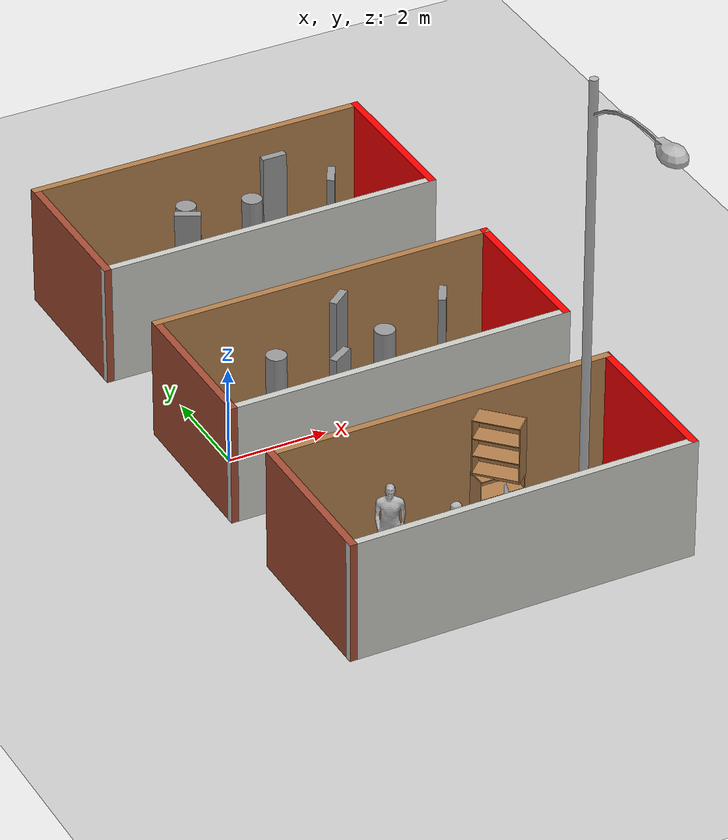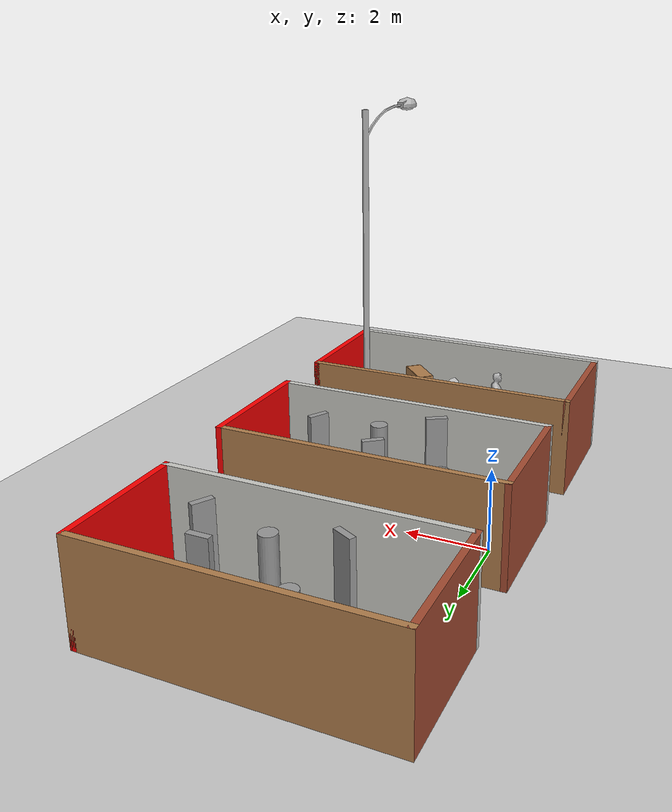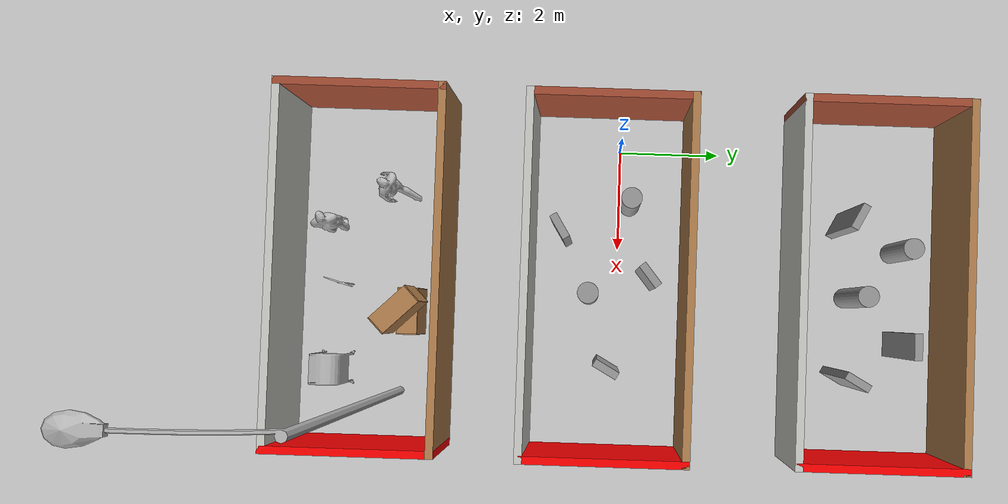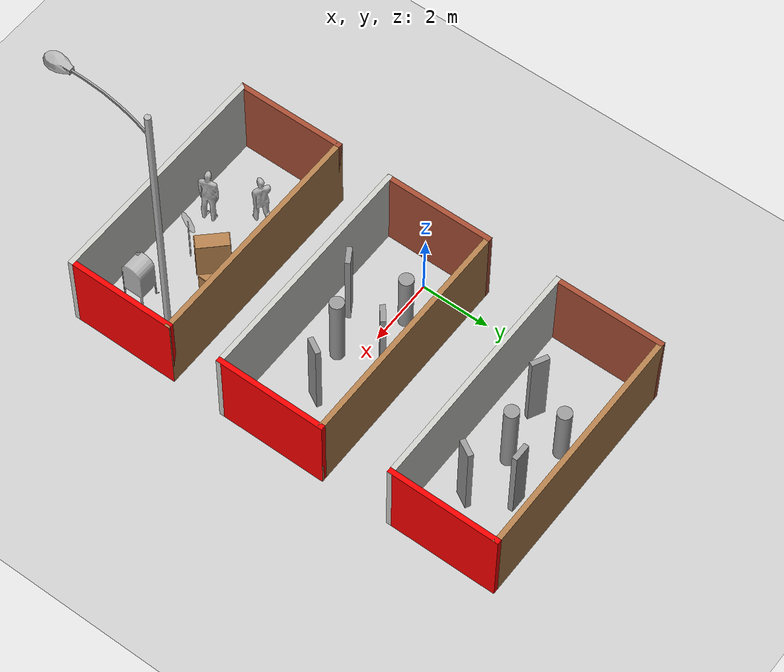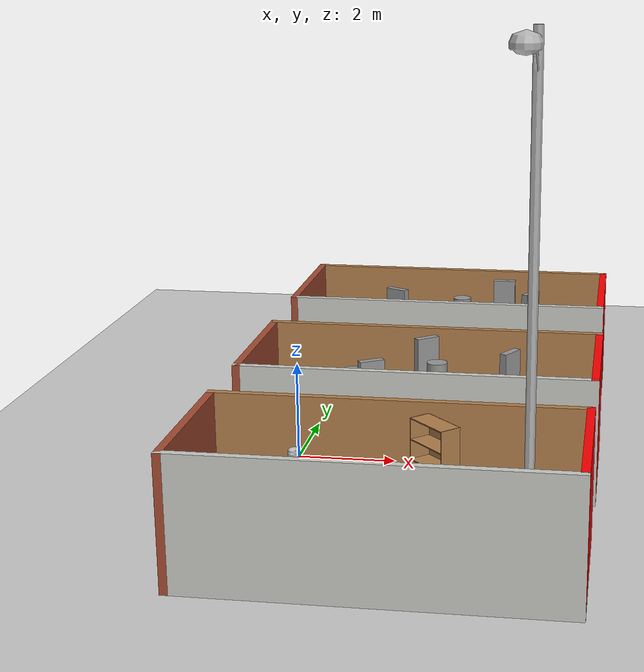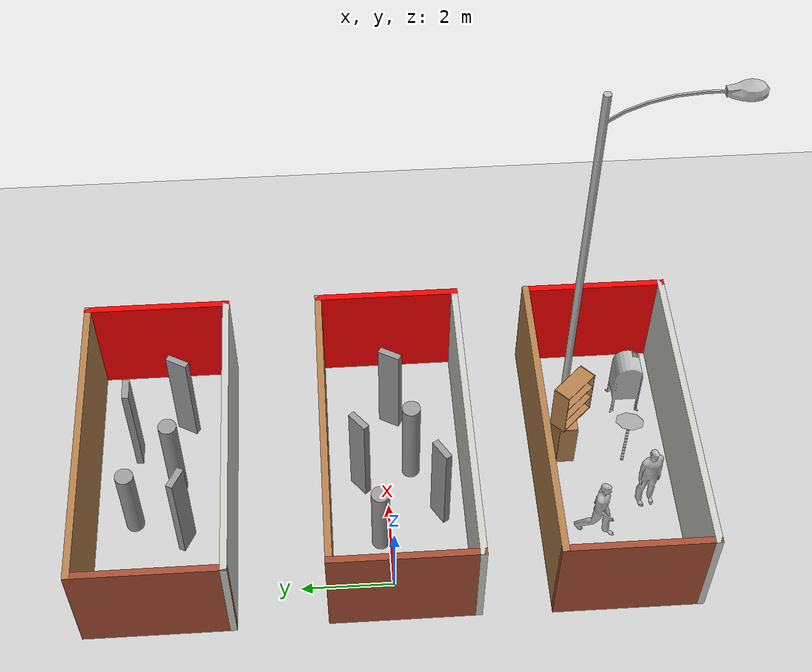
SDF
<sdf version="1.6">
 <world name="default">
  <light name="sun" type="directional">
   <pose>0 0 10 0 -0 0</pose>
   <diffuse>0.8 0.8 0.8 1</diffuse>
   <specular>0.2 0.2 0.2 1</specular>
   <attenuation>
    <range>1000</range>
    <constant>0.9</constant>
    <linear>0.01</linear>
    <quadratic>0.001</quadratic>
   </attenuation>
   <direction>-0.5 0.1 -0.9</direction>
  </light>
  <plugin name="ros_interface_plugin" filename="librotors_gazebo_ros_interface_plugin.so"/>
  <model name="ground_plane">
   <static>1</static>
   <link name="link">
    <collision name="collision">
     <geometry><plane><normal>0 0 1</normal><size>100 100</size></plane></geometry>
     <surface><friction><ode><mu>100</mu><mu2>50</mu2></ode></friction></surface>
    </collision>
    <visual name="visual">
     <cast_shadows>0</cast_shadows>
     <geometry><plane><normal>0 0 1</normal><size>100 100</size></plane></geometry>
     <material>
      <script><uri>file://media/materials/scripts/gazebo.material</uri><name>Gazebo/Grey</name></script>
     </material>
    </visual>
   </link>
  </model>
  <gravity>0 0 -9.8</gravity>
  <magnetic_field>6e-06 2.3e-05 -4.2e-05</magnetic_field>
  <atmosphere type="adiabatic"/>
  <physics name="default_physics" default="0" type="ode">
   <max_step_size>0.001</max_step_size>
   <real_time_factor>1</real_time_factor>
   <real_time_update_rate>1000</real_time_update_rate>
  </physics>
  <scene><ambient>0.4 0.4 0.4 1</ambient><background>0.7 0.7 0.7 1</background><shadows>1</shadows></scene>
  <spherical_coordinates>
   <surface_model>EARTH_WGS84</surface_model>
   <latitude_deg>0</latitude_deg>
   <longitude_deg>0</longitude_deg>
   <elevation>0</elevation>
   <heading_deg>0</heading_deg>
  </spherical_coordinates>
  <model name="train_with_test">
   <model name="rectangle_0">
    <link name="Floor_0">
     <pose>-0.037613 -0.045756 2.5 0 -0 0</pose>
     <inertial>
      <mass>1</mass>
      <inertia><ixx>1</ixx><ixy>0</ixy><ixz>0</ixz><iyy>1</iyy><iyz>0</iyz><izz>1</izz></inertia>
     </inertial>
     <visual name="Floor_0_Visual">
      <pose>0 0 0.05 0 -0 0</pose>
      <geometry><box><size>7 3.25 0.1</size></box></geometry>
      <material>
       <script><uri>file://media/materials/scripts/gazebo.material</uri><name>Gazebo/Grey</name></script>
       <ambient>1 1 1 1</ambient>
       <shader type="pixel"><normal_map>__default__</normal_map></shader>
       <diffuse>0.7 0.7 0.7 1</diffuse>
       <specular>0.01 0.01 0.01 1</specular>
       <emissive>0 0 0 1</emissive>
      </material>
      <meta><layer>1</layer></meta>
      <transparency>1</transparency>
     </visual>
     <collision name="Floor_0_Collision">
      <pose>0 0 0.05 0 -0 0</pose>
      <geometry><box><size>7 3.25 0.1</size></box></geometry>
      <surface>
       <friction>
        <ode><mu>1</mu><mu2>1</mu2><fdir1>0 0 0</fdir1><slip1>0</slip1><slip2>0</slip2></ode>
        <torsional>
         <coefficient>1</coefficient>
         <patch_radius>0</patch_radius>
         <surface_radius>0</surface_radius>
         <use_patch_radius>1</use_patch_radius>
         <ode><slip>0</slip></ode>
        </torsional>
       </friction>
       <bounce><restitution_coefficient>0</restitution_coefficient><threshold>1e+06</threshold></bounce>
       <contact>
        <collide_without_contact>0</collide_without_contact>
        <collide_without_contact_bitmask>1</collide_without_contact_bitmask>
        <collide_bitmask>1</collide_bitmask>
        <ode>
         <soft_cfm>0</soft_cfm>
         <soft_erp>0.2</soft_erp>
         <kp>1e+13</kp>
         <kd>1</kd>
         <max_vel>0.01</max_vel>
         <min_depth>0</min_depth>
        </ode>
        <bullet>
         <split_impulse>1</split_impulse>
         <split_impulse_penetration_threshold>-0.01</split_impulse_penetration_threshold>
         <soft_cfm>0</soft_cfm>
         <soft_erp>0.2</soft_erp>
         <kp>1e+13</kp>
         <kd>1</kd>
        </bullet>
       </contact>
      </surface>
     </collision>
    </link>
    <link name="Wall_0">
     <pose>0 1.55 0 0 -0 0</pose>
     <visual name="Wall_0_Visual">
      <pose>0 0 1.25 0 -0 0</pose>
      <geometry><box><size>7 0.15 2.5</size></box></geometry>
      <material>
       <script><uri>file://media/materials/scripts/gazebo.material</uri><name>Gazebo/Wood</name></script>
       <ambient>1 1 1 1</ambient>
       <shader type="pixel"/>
       <diffuse>1 1 1 1</diffuse>
       <specular>0.2 0.2 0.2 1</specular>
       <emissive>0 0 0 1</emissive>
      </material>
      <meta><layer>0</layer></meta>
     </visual>
     <collision name="Wall_0_Collision">
      <pose>0 0 1.25 0 -0 0</pose>
      <geometry><box><size>7 0.15 2.5</size></box></geometry>
      <surface>
       <friction>
        <ode><mu>1</mu><mu2>1</mu2><fdir1>0 0 0</fdir1><slip1>0</slip1><slip2>0</slip2></ode>
        <torsional>
         <coefficient>1</coefficient>
         <patch_radius>0</patch_radius>
         <surface_radius>0</surface_radius>
         <use_patch_radius>1</use_patch_radius>
         <ode><slip>0</slip></ode>
        </torsional>
       </friction>
       <bounce><restitution_coefficient>0</restitution_coefficient><threshold>1e+06</threshold></bounce>
       <contact>
        <collide_without_contact>0</collide_without_contact>
        <collide_without_contact_bitmask>1</collide_without_contact_bitmask>
        <collide_bitmask>1</collide_bitmask>
        <ode>
         <soft_cfm>0</soft_cfm>
         <soft_erp>0.2</soft_erp>
         <kp>1e+13</kp>
         <kd>1</kd>
         <max_vel>0.01</max_vel>
         <min_depth>0</min_depth>
        </ode>
        <bullet>
         <split_impulse>1</split_impulse>
         <split_impulse_penetration_threshold>-0.01</split_impulse_penetration_threshold>
         <soft_cfm>0</soft_cfm>
         <soft_erp>0.2</soft_erp>
         <kp>1e+13</kp>
         <kd>1</kd>
        </bullet>
       </contact>
      </surface>
     </collision>
    </link>
    <link name="Wall_1">
     <pose>3.425 0 0 0 0 -1.5708</pose>
     <visual name="Wall_1_Visual">
      <pose>0 0 1.25 0 -0 0</pose>
      <geometry><box><size>3.25 0.15 2.5</size></box></geometry>
      <material>
       <script><uri>file://media/materials/scripts/gazebo.material</uri><name>Gazebo/Grey</name></script>
       <ambient>1 0 0 1</ambient>
       <shader type="pixel"/>
       <diffuse>0.7 0.7 0.7 1</diffuse>
       <specular>0.01 0.01 0.01 1</specular>
       <emissive>0 0 0 1</emissive>
      </material>
      <meta><layer>0</layer></meta>
     </visual>
     <collision name="Wall_1_Collision">
      <pose>0 0 1.25 0 -0 0</pose>
      <geometry><box><size>3.25 0.15 2.5</size></box></geometry>
      <surface>
       <friction>
        <ode><mu>1</mu><mu2>1</mu2><fdir1>0 0 0</fdir1><slip1>0</slip1><slip2>0</slip2></ode>
        <torsional>
         <coefficient>1</coefficient>
         <patch_radius>0</patch_radius>
         <surface_radius>0</surface_radius>
         <use_patch_radius>1</use_patch_radius>
         <ode><slip>0</slip></ode>
        </torsional>
       </friction>
       <bounce><restitution_coefficient>0</restitution_coefficient><threshold>1e+06</threshold></bounce>
       <contact>
        <collide_without_contact>0</collide_without_contact>
        <collide_without_contact_bitmask>1</collide_without_contact_bitmask>
        <collide_bitmask>1</collide_bitmask>
        <ode>
         <soft_cfm>0</soft_cfm>
         <soft_erp>0.2</soft_erp>
         <kp>1e+13</kp>
         <kd>1</kd>
         <max_vel>0.01</max_vel>
         <min_depth>0</min_depth>
        </ode>
        <bullet>
         <split_impulse>1</split_impulse>
         <split_impulse_penetration_threshold>-0.01</split_impulse_penetration_threshold>
         <soft_cfm>0</soft_cfm>
         <soft_erp>0.2</soft_erp>
         <kp>1e+13</kp>
         <kd>1</kd>
        </bullet>
       </contact>
      </surface>
     </collision>
    </link>
    <link name="Wall_2">
     <pose>0 -1.55 0 0 -0 3.14159</pose>
     <visual name="Wall_2_Visual">
      <pose>0 0 1.25 0 -0 0</pose>
      <geometry><box><size>7 0.15 2.5</size></box></geometry>
      <material>
       <script><uri>file://media/materials/scripts/gazebo.material</uri><name>Gazebo/CeilingTiled</name></script>
       <ambient>1 1 1 1</ambient>
       <shader type="pixel"/>
       <diffuse>1 1 1 1</diffuse>
       <specular>0 0 0 1</specular>
       <emissive>0 0 0 1</emissive>
      </material>
      <meta><layer>0</layer></meta>
     </visual>
     <collision name="Wall_2_Collision">
      <pose>0 0 1.25 0 -0 0</pose>
      <geometry><box><size>7 0.15 2.5</size></box></geometry>
      <surface>
       <friction>
        <ode><mu>1</mu><mu2>1</mu2><fdir1>0 0 0</fdir1><slip1>0</slip1><slip2>0</slip2></ode>
        <torsional>
         <coefficient>1</coefficient>
         <patch_radius>0</patch_radius>
         <surface_radius>0</surface_radius>
         <use_patch_radius>1</use_patch_radius>
         <ode><slip>0</slip></ode>
        </torsional>
       </friction>
       <bounce><restitution_coefficient>0</restitution_coefficient><threshold>1e+06</threshold></bounce>
       <contact>
        <collide_without_contact>0</collide_without_contact>
        <collide_without_contact_bitmask>1</collide_without_contact_bitmask>
        <collide_bitmask>1</collide_bitmask>
        <ode>
         <soft_cfm>0</soft_cfm>
         <soft_erp>0.2</soft_erp>
         <kp>1e+13</kp>
         <kd>1</kd>
         <max_vel>0.01</max_vel>
         <min_depth>0</min_depth>
        </ode>
        <bullet>
         <split_impulse>1</split_impulse>
         <split_impulse_penetration_threshold>-0.01</split_impulse_penetration_threshold>
         <soft_cfm>0</soft_cfm>
         <soft_erp>0.2</soft_erp>
         <kp>1e+13</kp>
         <kd>1</kd>
        </bullet>
       </contact>
      </surface>
     </collision>
    </link>
    <link name="Wall_3">
     <pose>-3.425 0 0 0 -0 1.5708</pose>
     <visual name="Wall_3_Visual">
      <pose>0 0 1.25 0 -0 0</pose>
      <geometry><box><size>3.25 0.15 2.5</size></box></geometry>
      <material>
       <script><uri>file://media/materials/scripts/gazebo.material</uri><name>Gazebo/Bricks</name></script>
       <ambient>1 1 1 1</ambient>
       <shader type="pixel"/>
       <diffuse>1 1 1 1</diffuse>
       <specular>0.2 0.2 0.2 1</specular>
       <emissive>0 0 0 1</emissive>
      </material>
      <meta><layer>0</layer></meta>
     </visual>
     <collision name="Wall_3_Collision">
      <pose>0 0 1.25 0 -0 0</pose>
      <geometry><box><size>3.25 0.15 2.5</size></box></geometry>
      <surface>
       <friction>
        <ode><mu>1</mu><mu2>1</mu2><fdir1>0 0 0</fdir1><slip1>0</slip1><slip2>0</slip2></ode>
        <torsional>
         <coefficient>1</coefficient>
         <patch_radius>0</patch_radius>
         <surface_radius>0</surface_radius>
         <use_patch_radius>1</use_patch_radius>
         <ode><slip>0</slip></ode>
        </torsional>
       </friction>
       <bounce><restitution_coefficient>0</restitution_coefficient><threshold>1e+06</threshold></bounce>
       <contact>
        <collide_without_contact>0</collide_without_contact>
        <collide_without_contact_bitmask>1</collide_without_contact_bitmask>
        <collide_bitmask>1</collide_bitmask>
        <ode>
         <soft_cfm>0</soft_cfm>
         <soft_erp>0.2</soft_erp>
         <kp>1e+13</kp>
         <kd>1</kd>
         <max_vel>0.01</max_vel>
         <min_depth>0</min_depth>
        </ode>
        <bullet>
         <split_impulse>1</split_impulse>
         <split_impulse_penetration_threshold>-0.01</split_impulse_penetration_threshold>
         <soft_cfm>0</soft_cfm>
         <soft_erp>0.2</soft_erp>
         <kp>1e+13</kp>
         <kd>1</kd>
        </bullet>
       </contact>
      </surface>
     </collision>
    </link>
    <model name="unit_cylinder">
     <static>1</static>
     <link name="link">
      <inertial>
       <mass>1000</mass>
       <inertia><ixx>0.145833</ixx><ixy>0</ixy><ixz>0</ixz><iyy>0.145833</iyy><iyz>0</iyz><izz>0.125</izz></inertia>
      </inertial>
      <visual name="visual">
       <geometry><cylinder><radius>0.2</radius><length>2.5</length></cylinder></geometry>
       <material>
        <script><name>Gazebo/Grey</name><uri>file://media/materials/scripts/gazebo.material</uri></script>
        <shader type="pixel"><normal_map>__default__</normal_map></shader>
        <ambient>0.3 0.3 0.3 1</ambient>
        <diffuse>0.7 0.7 0.7 1</diffuse>
        <specular>0.01 0.01 0.01 1</specular>
        <emissive>0 0 0 1</emissive>
       </material>
      </visual>
      <collision name="collision">
       <geometry><cylinder><radius>0.2</radius><length>2.5</length></cylinder></geometry>
       <surface>
        <friction>
         <ode><mu>1</mu><mu2>1</mu2><fdir1>0 0 0</fdir1><slip1>0</slip1><slip2>0</slip2></ode>
         <torsional>
          <coefficient>1</coefficient>
          <patch_radius>0</patch_radius>
          <surface_radius>0</surface_radius>
          <use_patch_radius>1</use_patch_radius>
          <ode><slip>0</slip></ode>
         </torsional>
        </friction>
        <bounce><restitution_coefficient>0</restitution_coefficient><threshold>1e+06</threshold></bounce>
        <contact>
         <collide_without_contact>0</collide_without_contact>
         <collide_without_contact_bitmask>1</collide_without_contact_bitmask>
         <collide_bitmask>1</collide_bitmask>
         <ode>
          <soft_cfm>0</soft_cfm>
          <soft_erp>0.2</soft_erp>
          <kp>1e+13</kp>
          <kd>1</kd>
          <max_vel>0.01</max_vel>
          <min_depth>0</min_depth>
         </ode>
         <bullet>
          <split_impulse>1</split_impulse>
          <split_impulse_penetration_threshold>-0.01</split_impulse_penetration_threshold>
          <soft_cfm>0</soft_cfm>
          <soft_erp>0.2</soft_erp>
          <kp>1e+13</kp>
          <kd>1</kd>
         </bullet>
        </contact>
       </surface>
      </collision>
     </link>
     <static>0</static>
     <pose>-0.714118 0.631942 0.624728 0 -0 0</pose>
    </model>
    <model name="unit_cylinder_0">
     <static>1</static>
     <link name="link">
      <inertial>
       <mass>1000</mass>
       <inertia><ixx>0.145833</ixx><ixy>0</ixy><ixz>0</ixz><iyy>0.145833</iyy><iyz>0</iyz><izz>0.125</izz></inertia>
      </inertial>
      <visual name="visual">
       <geometry><cylinder><radius>0.2</radius><length>2.5</length></cylinder></geometry>
       <material>
        <script><name>Gazebo/Grey</name><uri>file://media/materials/scripts/gazebo.material</uri></script>
        <shader type="pixel"><normal_map>__default__</normal_map></shader>
        <ambient>0.3 0.3 0.3 1</ambient>
        <diffuse>0.7 0.7 0.7 1</diffuse>
        <specular>0.01 0.01 0.01 1</specular>
        <emissive>0 0 0 1</emissive>
       </material>
      </visual>
      <collision name="collision">
       <geometry><cylinder><radius>0.2</radius><length>2.5</length></cylinder></geometry>
       <surface>
        <friction>
         <ode><mu>1</mu><mu2>1</mu2><fdir1>0 0 0</fdir1><slip1>0</slip1><slip2>0</slip2></ode>
         <torsional>
          <coefficient>1</coefficient>
          <patch_radius>0</patch_radius>
          <surface_radius>0</surface_radius>
          <use_patch_radius>1</use_patch_radius>
          <ode><slip>0</slip></ode>
         </torsional>
        </friction>
        <bounce><restitution_coefficient>0</restitution_coefficient><threshold>1e+06</threshold></bounce>
        <contact>
         <collide_without_contact>0</collide_without_contact>
         <collide_without_contact_bitmask>1</collide_without_contact_bitmask>
         <collide_bitmask>1</collide_bitmask>
         <ode>
          <soft_cfm>0</soft_cfm>
          <soft_erp>0.2</soft_erp>
          <kp>1e+13</kp>
          <kd>1</kd>
          <max_vel>0.01</max_vel>
          <min_depth>0</min_depth>
         </ode>
         <bullet>
          <split_impulse>1</split_impulse>
          <split_impulse_penetration_threshold>-0.01</split_impulse_penetration_threshold>
          <soft_cfm>0</soft_cfm>
          <soft_erp>0.2</soft_erp>
          <kp>1e+13</kp>
          <kd>1</kd>
         </bullet>
        </contact>
       </surface>
      </collision>
     </link>
     <static>0</static>
     <pose>0.236201 -0.299847 1.0305 0 -0 0</pose>
    </model>
    <model name="wal.5">
     <static>1</static>
     <pose>1.14131 0.594105 0 0 -0 0</pose>
     <link name="Wall_13">
      <collision name="Wall_13_Collision">
       <geometry><box><size>0.5 0.15 2.5</size></box></geometry>
       <pose>0 0 1.25 0 -0 0</pose>
      </collision>
      <visual name="Wall_13_Visual">
       <pose>0 0 1.25 0 -0 0</pose>
       <geometry><box><size>0.5 0.15 2.5</size></box></geometry>
       <material>
        <script><uri>file://media/materials/scripts/gazebo.material</uri><name>Gazebo/Grey</name></script>
        <ambient>1 1 1 1</ambient>
       </material>
       <meta><layer>0</layer></meta>
      </visual>
     </link>
     <static>1</static>
    </model>
    <model name="wal.5_0">
     <static>1</static>
     <pose>1.82409 -0.501349 0 0 -0 1.05606</pose>
     <link name="Wall_13">
      <collision name="Wall_13_Collision">
       <geometry><box><size>0.5 0.15 2.5</size></box></geometry>
       <pose>0 0 1.25 0 -0 0</pose>
      </collision>
      <visual name="Wall_13_Visual">
       <pose>0 0 1.25 0 -0 0</pose>
       <geometry><box><size>0.5 0.15 2.5</size></box></geometry>
       <material>
        <script><uri>file://media/materials/scripts/gazebo.material</uri><name>Gazebo/Grey</name></script>
        <ambient>1 1 1 1</ambient>
       </material>
       <meta><layer>0</layer></meta>
      </visual>
     </link>
     <static>1</static>
    </model>
    <model name="wal.5_1">
     <static>1</static>
     <pose>-1.23686 -0.52787 0 0 0 -0.475164</pose>
     <link name="Wall_13">
      <collision name="Wall_13_Collision">
       <geometry><box><size>0.5 0.15 2.5</size></box></geometry>
       <pose>0 0 1.25 0 -0 0</pose>
      </collision>
      <visual name="Wall_13_Visual">
       <pose>0 0 1.25 0 -0 0</pose>
       <geometry><box><size>0.5 0.15 2.5</size></box></geometry>
       <material>
        <script><uri>file://media/materials/scripts/gazebo.material</uri><name>Gazebo/Grey</name></script>
        <ambient>1 1 1 1</ambient>
       </material>
       <meta><layer>0</layer></meta>
      </visual>
     </link>
     <static>1</static>
    </model>
    <static>1</static>
    <pose>-0.012983 4.98773 0 0 -0 0</pose>
   </model>
   <model name="test_rectangle">
    <link name="Floor_0">
     <pose>-0.010401 -0.028267 2.5 0 -0 0</pose>
     <inertial>
      <mass>1</mass>
      <inertia><ixx>1</ixx><ixy>0</ixy><ixz>0</ixz><iyy>1</iyy><iyz>0</iyz><izz>1</izz></inertia>
     </inertial>
     <visual name="Floor_0_Visual">
      <pose>0 0 0.05 0 -0 0</pose>
      <geometry><box><size>7 3.25 0.1</size></box></geometry>
      <material>
       <script><uri>file://media/materials/scripts/gazebo.material</uri><name>Gazebo/Grey</name></script>
       <ambient>1 1 1 1</ambient>
       <shader type="pixel"><normal_map>__default__</normal_map></shader>
       <diffuse>0.7 0.7 0.7 1</diffuse>
       <specular>0.01 0.01 0.01 1</specular>
       <emissive>0 0 0 1</emissive>
      </material>
      <meta><layer>1</layer></meta>
      <transparency>1</transparency>
     </visual>
     <collision name="Floor_0_Collision">
      <pose>0 0 0.05 0 -0 0</pose>
      <geometry><box><size>7 3.25 0.1</size></box></geometry>
      <surface>
       <friction>
        <ode><mu>1</mu><mu2>1</mu2><fdir1>0 0 0</fdir1><slip1>0</slip1><slip2>0</slip2></ode>
        <torsional>
         <coefficient>1</coefficient>
         <patch_radius>0</patch_radius>
         <surface_radius>0</surface_radius>
         <use_patch_radius>1</use_patch_radius>
         <ode><slip>0</slip></ode>
        </torsional>
       </friction>
       <bounce><restitution_coefficient>0</restitution_coefficient><threshold>1e+06</threshold></bounce>
       <contact>
        <collide_without_contact>0</collide_without_contact>
        <collide_without_contact_bitmask>1</collide_without_contact_bitmask>
        <collide_bitmask>1</collide_bitmask>
        <ode>
         <soft_cfm>0</soft_cfm>
         <soft_erp>0.2</soft_erp>
         <kp>1e+13</kp>
         <kd>1</kd>
         <max_vel>0.01</max_vel>
         <min_depth>0</min_depth>
        </ode>
        <bullet>
         <split_impulse>1</split_impulse>
         <split_impulse_penetration_threshold>-0.01</split_impulse_penetration_threshold>
         <soft_cfm>0</soft_cfm>
         <soft_erp>0.2</soft_erp>
         <kp>1e+13</kp>
         <kd>1</kd>
        </bullet>
       </contact>
      </surface>
     </collision>
    </link>
    <link name="Wall_0">
     <pose>0 1.55 0 0 -0 0</pose>
     <visual name="Wall_0_Visual">
      <pose>0 0 1.25 0 -0 0</pose>
      <geometry><box><size>7 0.15 2.5</size></box></geometry>
      <material>
       <script><uri>file://media/materials/scripts/gazebo.material</uri><name>Gazebo/Wood</name></script>
       <ambient>1 1 1 1</ambient>
       <shader type="pixel"/>
       <diffuse>1 1 1 1</diffuse>
       <specular>0.2 0.2 0.2 1</specular>
       <emissive>0 0 0 1</emissive>
      </material>
      <meta><layer>0</layer></meta>
     </visual>
     <collision name="Wall_0_Collision">
      <pose>0 0 1.25 0 -0 0</pose>
      <geometry><box><size>7 0.15 2.5</size></box></geometry>
      <surface>
       <friction>
        <ode><mu>1</mu><mu2>1</mu2><fdir1>0 0 0</fdir1><slip1>0</slip1><slip2>0</slip2></ode>
        <torsional>
         <coefficient>1</coefficient>
         <patch_radius>0</patch_radius>
         <surface_radius>0</surface_radius>
         <use_patch_radius>1</use_patch_radius>
         <ode><slip>0</slip></ode>
        </torsional>
       </friction>
       <bounce><restitution_coefficient>0</restitution_coefficient><threshold>1e+06</threshold></bounce>
       <contact>
        <collide_without_contact>0</collide_without_contact>
        <collide_without_contact_bitmask>1</collide_without_contact_bitmask>
        <collide_bitmask>1</collide_bitmask>
        <ode>
         <soft_cfm>0</soft_cfm>
         <soft_erp>0.2</soft_erp>
         <kp>1e+13</kp>
         <kd>1</kd>
         <max_vel>0.01</max_vel>
         <min_depth>0</min_depth>
        </ode>
        <bullet>
         <split_impulse>1</split_impulse>
         <split_impulse_penetration_threshold>-0.01</split_impulse_penetration_threshold>
         <soft_cfm>0</soft_cfm>
         <soft_erp>0.2</soft_erp>
         <kp>1e+13</kp>
         <kd>1</kd>
        </bullet>
       </contact>
      </surface>
     </collision>
    </link>
    <link name="Wall_1">
     <pose>3.425 0 0 0 0 -1.5708</pose>
     <visual name="Wall_1_Visual">
      <pose>0 0 1.25 0 -0 0</pose>
      <geometry><box><size>3.25 0.15 2.5</size></box></geometry>
      <material>
       <script><uri>file://media/materials/scripts/gazebo.material</uri><name>Gazebo/Grey</name></script>
       <ambient>1 0 0 1</ambient>
       <shader type="pixel"/>
       <diffuse>0.7 0.7 0.7 1</diffuse>
       <specular>0.01 0.01 0.01 1</specular>
       <emissive>0 0 0 1</emissive>
      </material>
      <meta><layer>0</layer></meta>
     </visual>
     <collision name="Wall_1_Collision">
      <pose>0 0 1.25 0 -0 0</pose>
      <geometry><box><size>3.25 0.15 2.5</size></box></geometry>
      <surface>
       <friction>
        <ode><mu>1</mu><mu2>1</mu2><fdir1>0 0 0</fdir1><slip1>0</slip1><slip2>0</slip2></ode>
        <torsional>
         <coefficient>1</coefficient>
         <patch_radius>0</patch_radius>
         <surface_radius>0</surface_radius>
         <use_patch_radius>1</use_patch_radius>
         <ode><slip>0</slip></ode>
        </torsional>
       </friction>
       <bounce><restitution_coefficient>0</restitution_coefficient><threshold>1e+06</threshold></bounce>
       <contact>
        <collide_without_contact>0</collide_without_contact>
        <collide_without_contact_bitmask>1</collide_without_contact_bitmask>
        <collide_bitmask>1</collide_bitmask>
        <ode>
         <soft_cfm>0</soft_cfm>
         <soft_erp>0.2</soft_erp>
         <kp>1e+13</kp>
         <kd>1</kd>
         <max_vel>0.01</max_vel>
         <min_depth>0</min_depth>
        </ode>
        <bullet>
         <split_impulse>1</split_impulse>
         <split_impulse_penetration_threshold>-0.01</split_impulse_penetration_threshold>
         <soft_cfm>0</soft_cfm>
         <soft_erp>0.2</soft_erp>
         <kp>1e+13</kp>
         <kd>1</kd>
        </bullet>
       </contact>
      </surface>
     </collision>
    </link>
    <link name="Wall_2">
     <pose>0 -1.55 0 0 -0 3.14159</pose>
     <visual name="Wall_2_Visual">
      <pose>0 0 1.25 0 -0 0</pose>
      <geometry><box><size>7 0.15 2.5</size></box></geometry>
      <material>
       <script><uri>file://media/materials/scripts/gazebo.material</uri><name>Gazebo/CeilingTiled</name></script>
       <ambient>1 1 1 1</ambient>
       <shader type="pixel"/>
       <diffuse>1 1 1 1</diffuse>
       <specular>0 0 0 1</specular>
       <emissive>0 0 0 1</emissive>
      </material>
      <meta><layer>0</layer></meta>
     </visual>
     <collision name="Wall_2_Collision">
      <pose>0 0 1.25 0 -0 0</pose>
      <geometry><box><size>7 0.15 2.5</size></box></geometry>
      <surface>
       <friction>
        <ode><mu>1</mu><mu2>1</mu2><fdir1>0 0 0</fdir1><slip1>0</slip1><slip2>0</slip2></ode>
        <torsional>
         <coefficient>1</coefficient>
         <patch_radius>0</patch_radius>
         <surface_radius>0</surface_radius>
         <use_patch_radius>1</use_patch_radius>
         <ode><slip>0</slip></ode>
        </torsional>
       </friction>
       <bounce><restitution_coefficient>0</restitution_coefficient><threshold>1e+06</threshold></bounce>
       <contact>
        <collide_without_contact>0</collide_without_contact>
        <collide_without_contact_bitmask>1</collide_without_contact_bitmask>
        <collide_bitmask>1</collide_bitmask>
        <ode>
         <soft_cfm>0</soft_cfm>
         <soft_erp>0.2</soft_erp>
         <kp>1e+13</kp>
         <kd>1</kd>
         <max_vel>0.01</max_vel>
         <min_depth>0</min_depth>
        </ode>
        <bullet>
         <split_impulse>1</split_impulse>
         <split_impulse_penetration_threshold>-0.01</split_impulse_penetration_threshold>
         <soft_cfm>0</soft_cfm>
         <soft_erp>0.2</soft_erp>
         <kp>1e+13</kp>
         <kd>1</kd>
        </bullet>
       </contact>
      </surface>
     </collision>
    </link>
    <link name="Wall_3">
     <pose>-3.425 0 0 0 -0 1.5708</pose>
     <visual name="Wall_3_Visual">
      <pose>0 0 1.25 0 -0 0</pose>
      <geometry><box><size>3.25 0.15 2.5</size></box></geometry>
      <material>
       <script><uri>file://media/materials/scripts/gazebo.material</uri><name>Gazebo/Bricks</name></script>
       <ambient>1 1 1 1</ambient>
       <shader type="pixel"/>
       <diffuse>1 1 1 1</diffuse>
       <specular>0.2 0.2 0.2 1</specular>
       <emissive>0 0 0 1</emissive>
      </material>
      <meta><layer>0</layer></meta>
     </visual>
     <collision name="Wall_3_Collision">
      <pose>0 0 1.25 0 -0 0</pose>
      <geometry><box><size>3.25 0.15 2.5</size></box></geometry>
      <surface>
       <friction>
        <ode><mu>1</mu><mu2>1</mu2><fdir1>0 0 0</fdir1><slip1>0</slip1><slip2>0</slip2></ode>
        <torsional>
         <coefficient>1</coefficient>
         <patch_radius>0</patch_radius>
         <surface_radius>0</surface_radius>
         <use_patch_radius>1</use_patch_radius>
         <ode><slip>0</slip></ode>
        </torsional>
       </friction>
       <bounce><restitution_coefficient>0</restitution_coefficient><threshold>1e+06</threshold></bounce>
       <contact>
        <collide_without_contact>0</collide_without_contact>
        <collide_without_contact_bitmask>1</collide_without_contact_bitmask>
        <collide_bitmask>1</collide_bitmask>
        <ode>
         <soft_cfm>0</soft_cfm>
         <soft_erp>0.2</soft_erp>
         <kp>1e+13</kp>
         <kd>1</kd>
         <max_vel>0.01</max_vel>
         <min_depth>0</min_depth>
        </ode>
        <bullet>
         <split_impulse>1</split_impulse>
         <split_impulse_penetration_threshold>-0.01</split_impulse_penetration_threshold>
         <soft_cfm>0</soft_cfm>
         <soft_erp>0.2</soft_erp>
         <kp>1e+13</kp>
         <kd>1</kd>
        </bullet>
       </contact>
      </surface>
     </collision>
    </link>
    <model name="unit_cylinder">
     <static>1</static>
     <link name="link">
      <inertial>
       <mass>1000</mass>
       <inertia><ixx>0.145833</ixx><ixy>0</ixy><ixz>0</ixz><iyy>0.145833</iyy><iyz>0</iyz><izz>0.125</izz></inertia>
      </inertial>
      <visual name="visual">
       <geometry><cylinder><radius>0.2</radius><length>2.5</length></cylinder></geometry>
       <material>
        <script><name>Gazebo/Grey</name><uri>file://media/materials/scripts/gazebo.material</uri></script>
        <shader type="pixel"><normal_map>__default__</normal_map></shader>
        <ambient>0.3 0.3 0.3 1</ambient>
        <diffuse>0.7 0.7 0.7 1</diffuse>
        <specular>0.01 0.01 0.01 1</specular>
        <emissive>0 0 0 1</emissive>
       </material>
      </visual>
      <collision name="collision">
       <geometry><cylinder><radius>0.2</radius><length>2.5</length></cylinder></geometry>
       <surface>
        <friction>
         <ode><mu>1</mu><mu2>1</mu2><fdir1>0 0 0</fdir1><slip1>0</slip1><slip2>0</slip2></ode>
         <torsional>
          <coefficient>1</coefficient>
          <patch_radius>0</patch_radius>
          <surface_radius>0</surface_radius>
          <use_patch_radius>1</use_patch_radius>
          <ode><slip>0</slip></ode>
         </torsional>
        </friction>
        <bounce><restitution_coefficient>0</restitution_coefficient><threshold>1e+06</threshold></bounce>
        <contact>
         <collide_without_contact>0</collide_without_contact>
         <collide_without_contact_bitmask>1</collide_without_contact_bitmask>
         <collide_bitmask>1</collide_bitmask>
         <ode>
          <soft_cfm>0</soft_cfm>
          <soft_erp>0.2</soft_erp>
          <kp>1e+13</kp>
          <kd>1</kd>
          <max_vel>0.01</max_vel>
          <min_depth>0</min_depth>
         </ode>
         <bullet>
          <split_impulse>1</split_impulse>
          <split_impulse_penetration_threshold>-0.01</split_impulse_penetration_threshold>
          <soft_cfm>0</soft_cfm>
          <soft_erp>0.2</soft_erp>
          <kp>1e+13</kp>
          <kd>1</kd>
         </bullet>
        </contact>
       </surface>
      </collision>
     </link>
     <static>0</static>
     <pose>-1.54211 0.416339 0.624728 0 -0 0</pose>
    </model>
    <model name="unit_cylinder_0">
     <static>1</static>
     <link name="link">
      <inertial>
       <mass>1000</mass>
       <inertia><ixx>0.145833</ixx><ixy>0</ixy><ixz>0</ixz><iyy>0.145833</iyy><iyz>0</iyz><izz>0.125</izz></inertia>
      </inertial>
      <visual name="visual">
       <geometry><cylinder><radius>0.2</radius><length>2.5</length></cylinder></geometry>
       <material>
        <script><name>Gazebo/Grey</name><uri>file://media/materials/scripts/gazebo.material</uri></script>
        <shader type="pixel"><normal_map>__default__</normal_map></shader>
        <ambient>0.3 0.3 0.3 1</ambient>
        <diffuse>0.7 0.7 0.7 1</diffuse>
        <specular>0.01 0.01 0.01 1</specular>
        <emissive>0 0 0 1</emissive>
       </material>
      </visual>
      <collision name="collision">
       <geometry><cylinder><radius>0.2</radius><length>2.5</length></cylinder></geometry>
       <surface>
        <friction>
         <ode><mu>1</mu><mu2>1</mu2><fdir1>0 0 0</fdir1><slip1>0</slip1><slip2>0</slip2></ode>
         <torsional>
          <coefficient>1</coefficient>
          <patch_radius>0</patch_radius>
          <surface_radius>0</surface_radius>
          <use_patch_radius>1</use_patch_radius>
          <ode><slip>0</slip></ode>
         </torsional>
        </friction>
        <bounce><restitution_coefficient>0</restitution_coefficient><threshold>1e+06</threshold></bounce>
        <contact>
         <collide_without_contact>0</collide_without_contact>
         <collide_without_contact_bitmask>1</collide_without_contact_bitmask>
         <collide_bitmask>1</collide_bitmask>
         <ode>
          <soft_cfm>0</soft_cfm>
          <soft_erp>0.2</soft_erp>
          <kp>1e+13</kp>
          <kd>1</kd>
          <max_vel>0.01</max_vel>
          <min_depth>0</min_depth>
         </ode>
         <bullet>
          <split_impulse>1</split_impulse>
          <split_impulse_penetration_threshold>-0.01</split_impulse_penetration_threshold>
          <soft_cfm>0</soft_cfm>
          <soft_erp>0.2</soft_erp>
          <kp>1e+13</kp>
          <kd>1</kd>
         </bullet>
        </contact>
       </surface>
      </collision>
     </link>
     <static>0</static>
     <pose>0.301347 -0.360935 1.08798 0 -0 0</pose>
    </model>
    <model name="wal.5">
     <static>1</static>
     <pose>-0.060844 0.789388 0 0 -0 0.673564</pose>
     <link name="Wall_13">
      <collision name="Wall_13_Collision">
       <geometry><box><size>0.5 0.15 2.5</size></box></geometry>
       <pose>0 0 1.25 0 -0 0</pose>
      </collision>
      <visual name="Wall_13_Visual">
       <pose>0 0 1.25 0 -0 0</pose>
       <geometry><box><size>0.5 0.15 2.5</size></box></geometry>
       <material>
        <script><uri>file://media/materials/scripts/gazebo.material</uri><name>Gazebo/Grey</name></script>
        <ambient>1 1 1 1</ambient>
       </material>
       <meta><layer>0</layer></meta>
      </visual>
     </link>
     <static>1</static>
    </model>
    <model name="wal.5_0">
     <pose>1.70551 0.018659 0 0 -0 1.05606</pose>
     <link name="Wall_13">
      <collision name="Wall_13_Collision">
       <geometry><box><size>0.5 0.15 2.5</size></box></geometry>
       <pose>0 0 1.25 0 -0 0</pose>
      </collision>
      <visual name="Wall_13_Visual">
       <pose>0 0 1.25 0 -0 0</pose>
       <geometry><box><size>0.5 0.15 2.5</size></box></geometry>
       <material>
        <script><uri>file://media/materials/scripts/gazebo.material</uri><name>Gazebo/Grey</name></script>
        <ambient>1 1 1 1</ambient>
       </material>
       <meta><layer>0</layer></meta>
      </visual>
     </link>
     <static>1</static>
    </model>
    <model name="wal.5_1">
     <pose>-0.914997 -0.923567 0 0 -0 0.550082</pose>
     <link name="Wall_13">
      <collision name="Wall_13_Collision">
       <geometry><box><size>0.5 0.15 2.5</size></box></geometry>
       <pose>0 0 1.25 0 -0 0</pose>
      </collision>
      <visual name="Wall_13_Visual">
       <pose>0 0 1.25 0 -0 0</pose>
       <geometry><box><size>0.5 0.15 2.5</size></box></geometry>
       <material>
        <script><uri>file://media/materials/scripts/gazebo.material</uri><name>Gazebo/Grey</name></script>
        <ambient>1 1 1 1</ambient>
       </material>
       <meta><layer>0</layer></meta>
      </visual>
     </link>
     <static>1</static>
    </model>
    <static>1</static>
    <pose>0.02245 -0.195718 0 0 -0 0</pose>
   </model>
   <model name="test_rectangle_12">
    <static>1</static>
    <link name="Floor_0">
     <pose>0.026754 0.023856 2.5 0 -0 0</pose>
     <inertial>
      <mass>1</mass>
      <inertia><ixx>1</ixx><ixy>0</ixy><ixz>0</ixz><iyy>1</iyy><iyz>0</iyz><izz>1</izz></inertia>
     </inertial>
     <visual name="Floor_0_Visual">
      <pose>0 0 0.05 0 -0 0</pose>
      <geometry><box><size>7 3.25 0.1</size></box></geometry>
      <material>
       <script><uri>file://media/materials/scripts/gazebo.material</uri><name>Gazebo/Grey</name></script>
       <ambient>1 1 1 1</ambient>
       <shader type="pixel"><normal_map>__default__</normal_map></shader>
       <diffuse>0.7 0.7 0.7 1</diffuse>
       <specular>0.01 0.01 0.01 1</specular>
       <emissive>0 0 0 1</emissive>
      </material>
      <meta><layer>1</layer></meta>
      <transparency>1</transparency>
     </visual>
     <collision name="Floor_0_Collision">
      <pose>0 0 0.05 0 -0 0</pose>
      <geometry><box><size>7 3.25 0.1</size></box></geometry>
      <surface>
       <friction>
        <ode><mu>1</mu><mu2>1</mu2><fdir1>0 0 0</fdir1><slip1>0</slip1><slip2>0</slip2></ode>
        <torsional>
         <coefficient>1</coefficient>
         <patch_radius>0</patch_radius>
         <surface_radius>0</surface_radius>
         <use_patch_radius>1</use_patch_radius>
         <ode><slip>0</slip></ode>
        </torsional>
       </friction>
       <bounce><restitution_coefficient>0</restitution_coefficient><threshold>1e+06</threshold></bounce>
       <contact>
        <collide_without_contact>0</collide_without_contact>
        <collide_without_contact_bitmask>1</collide_without_contact_bitmask>
        <collide_bitmask>1</collide_bitmask>
        <ode>
         <soft_cfm>0</soft_cfm>
         <soft_erp>0.2</soft_erp>
         <kp>1e+13</kp>
         <kd>1</kd>
         <max_vel>0.01</max_vel>
         <min_depth>0</min_depth>
        </ode>
        <bullet>
         <split_impulse>1</split_impulse>
         <split_impulse_penetration_threshold>-0.01</split_impulse_penetration_threshold>
         <soft_cfm>0</soft_cfm>
         <soft_erp>0.2</soft_erp>
         <kp>1e+13</kp>
         <kd>1</kd>
        </bullet>
       </contact>
      </surface>
     </collision>
    </link>
    <link name="Wall_0">
     <pose>0 1.55 0 0 -0 0</pose>
     <visual name="Wall_0_Visual">
      <pose>0 0 1.25 0 -0 0</pose>
      <geometry><box><size>7 0.15 2.5</size></box></geometry>
      <material>
       <script><uri>file://media/materials/scripts/gazebo.material</uri><name>Gazebo/Wood</name></script>
       <ambient>1 1 1 1</ambient>
       <shader type="pixel"/>
       <diffuse>1 1 1 1</diffuse>
       <specular>0.2 0.2 0.2 1</specular>
       <emissive>0 0 0 1</emissive>
      </material>
      <meta><layer>0</layer></meta>
     </visual>
     <collision name="Wall_0_Collision">
      <pose>0 0 1.25 0 -0 0</pose>
      <geometry><box><size>7 0.15 2.5</size></box></geometry>
      <surface>
       <friction>
        <ode><mu>1</mu><mu2>1</mu2><fdir1>0 0 0</fdir1><slip1>0</slip1><slip2>0</slip2></ode>
        <torsional>
         <coefficient>1</coefficient>
         <patch_radius>0</patch_radius>
         <surface_radius>0</surface_radius>
         <use_patch_radius>1</use_patch_radius>
         <ode><slip>0</slip></ode>
        </torsional>
       </friction>
       <bounce><restitution_coefficient>0</restitution_coefficient><threshold>1e+06</threshold></bounce>
       <contact>
        <collide_without_contact>0</collide_without_contact>
        <collide_without_contact_bitmask>1</collide_without_contact_bitmask>
        <collide_bitmask>1</collide_bitmask>
        <ode>
         <soft_cfm>0</soft_cfm>
         <soft_erp>0.2</soft_erp>
         <kp>1e+13</kp>
         <kd>1</kd>
         <max_vel>0.01</max_vel>
         <min_depth>0</min_depth>
        </ode>
        <bullet>
         <split_impulse>1</split_impulse>
         <split_impulse_penetration_threshold>-0.01</split_impulse_penetration_threshold>
         <soft_cfm>0</soft_cfm>
         <soft_erp>0.2</soft_erp>
         <kp>1e+13</kp>
         <kd>1</kd>
        </bullet>
       </contact>
      </surface>
     </collision>
    </link>
    <link name="Wall_1">
     <pose>3.425 0 0 0 0 -1.5708</pose>
     <visual name="Wall_1_Visual">
      <pose>0 0 1.25 0 -0 0</pose>
      <geometry><box><size>3.25 0.15 2.5</size></box></geometry>
      <material>
       <script><uri>file://media/materials/scripts/gazebo.material</uri><name>Gazebo/Grey</name></script>
       <ambient>1 0 0 1</ambient>
       <shader type="pixel"/>
       <diffuse>0.7 0.7 0.7 1</diffuse>
       <specular>0.01 0.01 0.01 1</specular>
       <emissive>0 0 0 1</emissive>
      </material>
      <meta><layer>0</layer></meta>
     </visual>
     <collision name="Wall_1_Collision">
      <pose>0 0 1.25 0 -0 0</pose>
      <geometry><box><size>3.25 0.15 2.5</size></box></geometry>
      <surface>
       <friction>
        <ode><mu>1</mu><mu2>1</mu2><fdir1>0 0 0</fdir1><slip1>0</slip1><slip2>0</slip2></ode>
        <torsional>
         <coefficient>1</coefficient>
         <patch_radius>0</patch_radius>
         <surface_radius>0</surface_radius>
         <use_patch_radius>1</use_patch_radius>
         <ode><slip>0</slip></ode>
        </torsional>
       </friction>
       <bounce><restitution_coefficient>0</restitution_coefficient><threshold>1e+06</threshold></bounce>
       <contact>
        <collide_without_contact>0</collide_without_contact>
        <collide_without_contact_bitmask>1</collide_without_contact_bitmask>
        <collide_bitmask>1</collide_bitmask>
        <ode>
         <soft_cfm>0</soft_cfm>
         <soft_erp>0.2</soft_erp>
         <kp>1e+13</kp>
         <kd>1</kd>
         <max_vel>0.01</max_vel>
         <min_depth>0</min_depth>
        </ode>
        <bullet>
         <split_impulse>1</split_impulse>
         <split_impulse_penetration_threshold>-0.01</split_impulse_penetration_threshold>
         <soft_cfm>0</soft_cfm>
         <soft_erp>0.2</soft_erp>
         <kp>1e+13</kp>
         <kd>1</kd>
        </bullet>
       </contact>
      </surface>
     </collision>
    </link>
    <link name="Wall_2">
     <pose>0 -1.55 0 0 -0 3.14159</pose>
     <visual name="Wall_2_Visual">
      <pose>0 0 1.25 0 -0 0</pose>
      <geometry><box><size>7 0.15 2.5</size></box></geometry>
      <material>
       <script><uri>file://media/materials/scripts/gazebo.material</uri><name>Gazebo/CeilingTiled</name></script>
       <ambient>1 1 1 1</ambient>
       <shader type="pixel"/>
       <diffuse>1 1 1 1</diffuse>
       <specular>0 0 0 1</specular>
       <emissive>0 0 0 1</emissive>
      </material>
      <meta><layer>0</layer></meta>
     </visual>
     <collision name="Wall_2_Collision">
      <pose>0 0 1.25 0 -0 0</pose>
      <geometry><box><size>7 0.15 2.5</size></box></geometry>
      <surface>
       <friction>
        <ode><mu>1</mu><mu2>1</mu2><fdir1>0 0 0</fdir1><slip1>0</slip1><slip2>0</slip2></ode>
        <torsional>
         <coefficient>1</coefficient>
         <patch_radius>0</patch_radius>
         <surface_radius>0</surface_radius>
         <use_patch_radius>1</use_patch_radius>
         <ode><slip>0</slip></ode>
        </torsional>
       </friction>
       <bounce><restitution_coefficient>0</restitution_coefficient><threshold>1e+06</threshold></bounce>
       <contact>
        <collide_without_contact>0</collide_without_contact>
        <collide_without_contact_bitmask>1</collide_without_contact_bitmask>
        <collide_bitmask>1</collide_bitmask>
        <ode>
         <soft_cfm>0</soft_cfm>
         <soft_erp>0.2</soft_erp>
         <kp>1e+13</kp>
         <kd>1</kd>
         <max_vel>0.01</max_vel>
         <min_depth>0</min_depth>
        </ode>
        <bullet>
         <split_impulse>1</split_impulse>
         <split_impulse_penetration_threshold>-0.01</split_impulse_penetration_threshold>
         <soft_cfm>0</soft_cfm>
         <soft_erp>0.2</soft_erp>
         <kp>1e+13</kp>
         <kd>1</kd>
        </bullet>
       </contact>
      </surface>
     </collision>
    </link>
    <link name="Wall_3">
     <pose>-3.425 0 0 0 -0 1.5708</pose>
     <visual name="Wall_3_Visual">
      <pose>0 0 1.25 0 -0 0</pose>
      <geometry><box><size>3.25 0.15 2.5</size></box></geometry>
      <material>
       <script><uri>file://media/materials/scripts/gazebo.material</uri><name>Gazebo/Bricks</name></script>
       <ambient>1 1 1 1</ambient>
       <shader type="pixel"/>
       <diffuse>1 1 1 1</diffuse>
       <specular>0.2 0.2 0.2 1</specular>
       <emissive>0 0 0 1</emissive>
      </material>
      <meta><layer>0</layer></meta>
     </visual>
     <collision name="Wall_3_Collision">
      <pose>0 0 1.25 0 -0 0</pose>
      <geometry><box><size>3.25 0.15 2.5</size></box></geometry>
      <surface>
       <friction>
        <ode><mu>1</mu><mu2>1</mu2><fdir1>0 0 0</fdir1><slip1>0</slip1><slip2>0</slip2></ode>
        <torsional>
         <coefficient>1</coefficient>
         <patch_radius>0</patch_radius>
         <surface_radius>0</surface_radius>
         <use_patch_radius>1</use_patch_radius>
         <ode><slip>0</slip></ode>
        </torsional>
       </friction>
       <bounce><restitution_coefficient>0</restitution_coefficient><threshold>1e+06</threshold></bounce>
       <contact>
        <collide_without_contact>0</collide_without_contact>
        <collide_without_contact_bitmask>1</collide_without_contact_bitmask>
        <collide_bitmask>1</collide_bitmask>
        <ode>
         <soft_cfm>0</soft_cfm>
         <soft_erp>0.2</soft_erp>
         <kp>1e+13</kp>
         <kd>1</kd>
         <max_vel>0.01</max_vel>
         <min_depth>0</min_depth>
        </ode>
        <bullet>
         <split_impulse>1</split_impulse>
         <split_impulse_penetration_threshold>-0.01</split_impulse_penetration_threshold>
         <soft_cfm>0</soft_cfm>
         <soft_erp>0.2</soft_erp>
         <kp>1e+13</kp>
         <kd>1</kd>
        </bullet>
       </contact>
      </surface>
     </collision>
    </link>
    <model name="Lamp Post">
     <static>1</static>
     <link name="link">
      <collision name="collision">
       <geometry><mesh><uri>model://lamp_post/meshes/lamp_post.dae</uri><scale>3 3 3</scale></mesh></geometry>
      </collision>
      <visual name="visual">
       <geometry><mesh><uri>model://lamp_post/meshes/lamp_post.dae</uri><scale>3 3 3</scale></mesh></geometry>
      </visual>
     </link>
     <pose>2.42438 0.556537 0 0 -0 0</pose>
    </model>
    <model name="Stop Sign">
     <static>1</static>
     <link name="link">
      <collision name="collision">
       <geometry><mesh><uri>model://stop_sign/meshes/stop_sign.dae</uri></mesh></geometry>
      </collision>
      <visual name="visual">
       <geometry><mesh><uri>model://stop_sign/meshes/stop_sign.dae</uri></mesh></geometry>
       <material>
        <script>
         <uri>model://stop_sign/materials/scripts</uri>
         <uri>model://stop_sign/materials/textures</uri>
         <name>StopSign/Diffuse</name>
        </script>
       </material>
      </visual>
     </link>
     <pose>0.279532 -0.454972 0 0 0 -1.86971</pose>
    </model>
    <model name="bookshelf">
     <static>1</static>
     <link name="link">
      <inertial><mass>1</mass></inertial>
      <collision name="back">
       <pose>0 0.005 0.6 0 -0 0</pose>
       <geometry><box><size>0.9 0.01 1.2</size></box></geometry>
      </collision>
      <visual name="visual1">
       <pose>0 0.005 0.6 0 -0 0</pose>
       <geometry><box><size>0.9 0.01 1.2</size></box></geometry>
       <material>
        <script><uri>file://media/materials/scripts/gazebo.material</uri><name>Gazebo/Wood</name></script>
       </material>
      </visual>
      <collision name="left_side">
       <pose>0.45 -0.195 0.6 0 -0 0</pose>
       <geometry><box><size>0.02 0.4 1.2</size></box></geometry>
      </collision>
      <visual name="visual2">
       <pose>0.45 -0.195 0.6 0 -0 0</pose>
       <geometry><box><size>0.02 0.4 1.2</size></box></geometry>
       <material>
        <script><uri>file://media/materials/scripts/gazebo.material</uri><name>Gazebo/Wood</name></script>
       </material>
      </visual>
      <collision name="right_side">
       <pose>-0.45 -0.195 0.6 0 -0 0</pose>
       <geometry><box><size>0.02 0.4 1.2</size></box></geometry>
      </collision>
      <visual name="visual3">
       <pose>-0.45 -0.195 0.6 0 -0 0</pose>
       <geometry><box><size>0.02 0.4 1.2</size></box></geometry>
       <material>
        <script><uri>file://media/materials/scripts/gazebo.material</uri><name>Gazebo/Wood</name></script>
       </material>
      </visual>
      <collision name="bottom">
       <pose>0 -0.195 0.03 0 -0 0</pose>
       <geometry><box><size>0.88 0.4 0.06</size></box></geometry>
      </collision>
      <visual name="visual4">
       <pose>0 -0.195 0.03 0 -0 0</pose>
       <geometry><box><size>0.88 0.4 0.06</size></box></geometry>
       <material>
        <script><uri>file://media/materials/scripts/gazebo.material</uri><name>Gazebo/Wood</name></script>
       </material>
      </visual>
      <collision name="top">
       <pose>0 -0.195 1.19 0 -0 0</pose>
       <geometry><box><size>0.88 0.4 0.02</size></box></geometry>
      </collision>
      <visual name="visual5">
       <pose>0 -0.195 1.19 0 -0 0</pose>
       <geometry><box><size>0.88 0.4 0.02</size></box></geometry>
       <material>
        <script><uri>file://media/materials/scripts/gazebo.material</uri><name>Gazebo/Wood</name></script>
       </material>
      </visual>
      <collision name="low_shelf">
       <pose>0 -0.195 0.43 0 -0 0</pose>
       <geometry><box><size>0.88 0.4 0.02</size></box></geometry>
      </collision>
      <visual name="visual6">
       <pose>0 -0.195 0.43 0 -0 0</pose>
       <geometry><box><size>0.88 0.4 0.02</size></box></geometry>
       <material>
        <script><uri>file://media/materials/scripts/gazebo.material</uri><name>Gazebo/Wood</name></script>
       </material>
      </visual>
      <collision name="high_shelf">
       <pose>0 -0.195 0.8 0 -0 0</pose>
       <geometry><box><size>0.88 0.4 0.02</size></box></geometry>
      </collision>
      <visual name="visual7">
       <pose>0 -0.195 0.8 0 -0 0</pose>
       <geometry><box><size>0.88 0.4 0.02</size></box></geometry>
       <material>
        <script><uri>file://media/materials/scripts/gazebo.material</uri><name>Gazebo/Wood</name></script>
       </material>
      </visual>
     </link>
     <pose>0.789488 1.04118 0 0 -0 0</pose>
    </model>
    <model name="bookshelf_clone">
     <static>1</static>
     <link name="link">
      <inertial><mass>1</mass></inertial>
      <collision name="back">
       <pose>0 0.005 0.6 0 -0 0</pose>
       <geometry><box><size>0.9 0.01 1.2</size></box></geometry>
      </collision>
      <visual name="visual1">
       <pose>0 0.005 0.6 0 -0 0</pose>
       <geometry><box><size>0.9 0.01 1.2</size></box></geometry>
       <material>
        <script><uri>file://media/materials/scripts/gazebo.material</uri><name>Gazebo/Wood</name></script>
       </material>
      </visual>
      <collision name="left_side">
       <pose>0.45 -0.195 0.6 0 -0 0</pose>
       <geometry><box><size>0.02 0.4 1.2</size></box></geometry>
      </collision>
      <visual name="visual2">
       <pose>0.45 -0.195 0.6 0 -0 0</pose>
       <geometry><box><size>0.02 0.4 1.2</size></box></geometry>
       <material>
        <script><uri>file://media/materials/scripts/gazebo.material</uri><name>Gazebo/Wood</name></script>
       </material>
      </visual>
      <collision name="right_side">
       <pose>-0.45 -0.195 0.6 0 -0 0</pose>
       <geometry><box><size>0.02 0.4 1.2</size></box></geometry>
      </collision>
      <visual name="visual3">
       <pose>-0.45 -0.195 0.6 0 -0 0</pose>
       <geometry><box><size>0.02 0.4 1.2</size></box></geometry>
       <material>
        <script><uri>file://media/materials/scripts/gazebo.material</uri><name>Gazebo/Wood</name></script>
       </material>
      </visual>
      <collision name="bottom">
       <pose>0 -0.195 0.03 0 -0 0</pose>
       <geometry><box><size>0.88 0.4 0.06</size></box></geometry>
      </collision>
      <visual name="visual4">
       <pose>0 -0.195 0.03 0 -0 0</pose>
       <geometry><box><size>0.88 0.4 0.06</size></box></geometry>
       <material>
        <script><uri>file://media/materials/scripts/gazebo.material</uri><name>Gazebo/Wood</name></script>
       </material>
      </visual>
      <collision name="top">
       <pose>0 -0.195 1.19 0 -0 0</pose>
       <geometry><box><size>0.88 0.4 0.02</size></box></geometry>
      </collision>
      <visual name="visual5">
       <pose>0 -0.195 1.19 0 -0 0</pose>
       <geometry><box><size>0.88 0.4 0.02</size></box></geometry>
       <material>
        <script><uri>file://media/materials/scripts/gazebo.material</uri><name>Gazebo/Wood</name></script>
       </material>
      </visual>
      <collision name="low_shelf">
       <pose>0 -0.195 0.43 0 -0 0</pose>
       <geometry><box><size>0.88 0.4 0.02</size></box></geometry>
      </collision>
      <visual name="visual6">
       <pose>0 -0.195 0.43 0 -0 0</pose>
       <geometry><box><size>0.88 0.4 0.02</size></box></geometry>
       <material>
        <script><uri>file://media/materials/scripts/gazebo.material</uri><name>Gazebo/Wood</name></script>
       </material>
      </visual>
      <collision name="high_shelf">
       <pose>0 -0.195 0.8 0 -0 0</pose>
       <geometry><box><size>0.88 0.4 0.02</size></box></geometry>
      </collision>
      <visual name="visual7">
       <pose>0 -0.195 0.8 0 -0 0</pose>
       <geometry><box><size>0.88 0.4 0.02</size></box></geometry>
       <material>
        <script><uri>file://media/materials/scripts/gazebo.material</uri><name>Gazebo/Wood</name></script>
       </material>
      </visual>
     </link>
     <pose>0.906507 0.909629 1.1789 0 0 -0.807377</pose>
    </model>
    <model name="person_standing">
     <static>1</static>
     <link name="link">
      <inertial>
       <pose>0 -0.1 0.95 0 -0 0</pose>
       <mass>80</mass>
       <inertia><ixx>24.88</ixx><ixy>0</ixy><ixz>0</ixz><iyy>25.73</iyy><iyz>0</iyz><izz>2.48</izz></inertia>
      </inertial>
      <collision name="bottom">
       <pose>0 -0.1 0.01 0 -0 0</pose>
       <geometry><box><size>0.5 0.35 0.02</size></box></geometry>
      </collision>
      <collision name="person">
       <pose>0 0 0.02 0.04 -0 0</pose>
       <geometry><mesh><uri>model://person_standing/meshes/standing.dae</uri></mesh></geometry>
      </collision>
      <visual name="visual">
       <pose>0 0 0.02 0.04 -0 0</pose>
       <geometry><mesh><uri>model://person_standing/meshes/standing.dae</uri></mesh></geometry>
      </visual>
     </link>
     <pose>-0.828846 -0.730283 0.126834 0 0 -1.34588</pose>
    </model>
    <model name="person_walking">
     <static>1</static>
     <link name="link">
      <inertial>
       <pose>0 0 0.95 0 -0 0</pose>
       <mass>80</mass>
       <inertia><ixx>27.82</ixx><ixy>0</ixy><ixz>0</ixz><iyy>24.88</iyy><iyz>0</iyz><izz>4.57</izz></inertia>
      </inertial>
      <collision name="bottom">
       <pose>0 0 0.01 0 -0 0</pose>
       <geometry><box><size>0.35 0.75 0.02</size></box></geometry>
      </collision>
      <collision name="person">
       <pose>0 0 -0.02 0 -0 0</pose>
       <geometry><mesh><uri>model://person_walking/meshes/walking.dae</uri></mesh></geometry>
      </collision>
      <visual name="visual">
       <pose>0 0 -0.02 0 -0 0</pose>
       <geometry><mesh><uri>model://person_walking/meshes/walking.dae</uri></mesh></geometry>
      </visual>
     </link>
     <pose>-1.61596 0.445873 0.071499 0 0 -0.518848</pose>
    </model>
    <model name="postbox">
     <static>1</static>
     <link name="link">
      <collision name="collision">
       <geometry><mesh><uri>model://postbox/meshes/postbox.dae</uri></mesh></geometry>
      </collision>
      <visual name="visual"><geometry><mesh><uri>model://postbox/meshes/postbox.dae</uri></mesh></geometry></visual>
     </link>
     <pose>1.97658 -0.722635 0 0 -0 0</pose>
    </model>
    <static>1</static>
    <pose>-0.009912 -4.93178 0 0 -0 0</pose>
   </model>
   <static>1</static>
   <pose>2.62226 0.001572 0 0 -0 0</pose>
  </model>
 </world>
</sdf>
